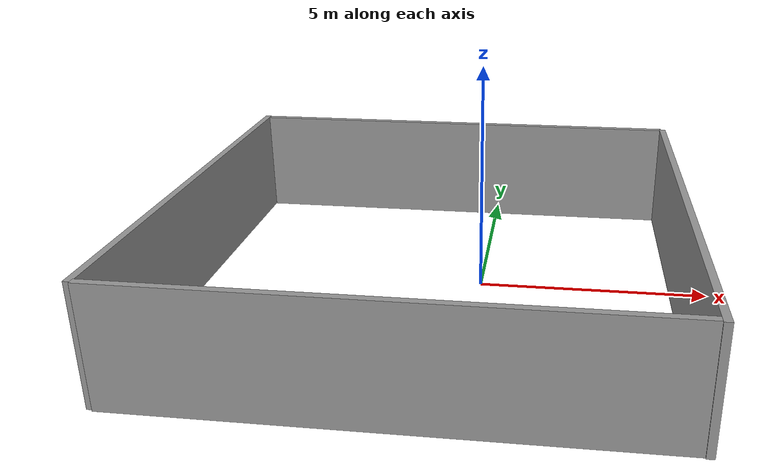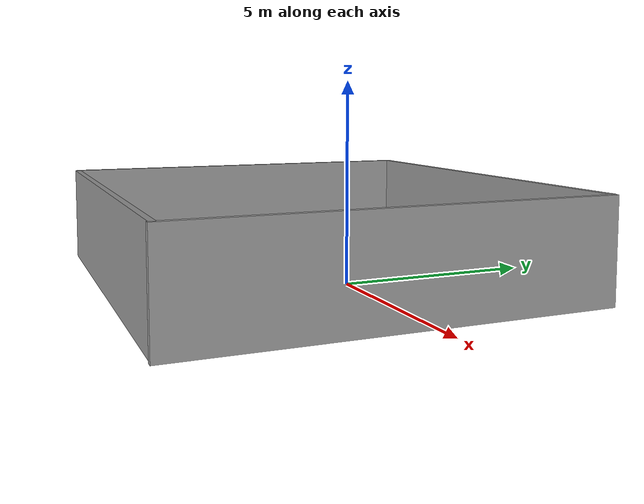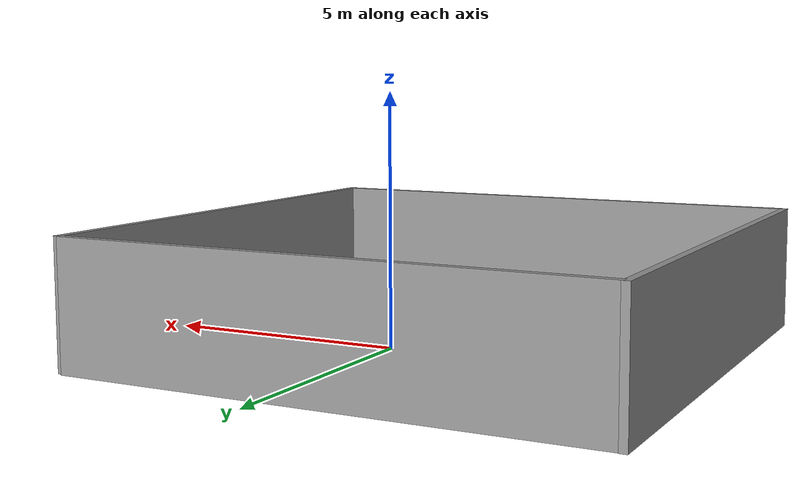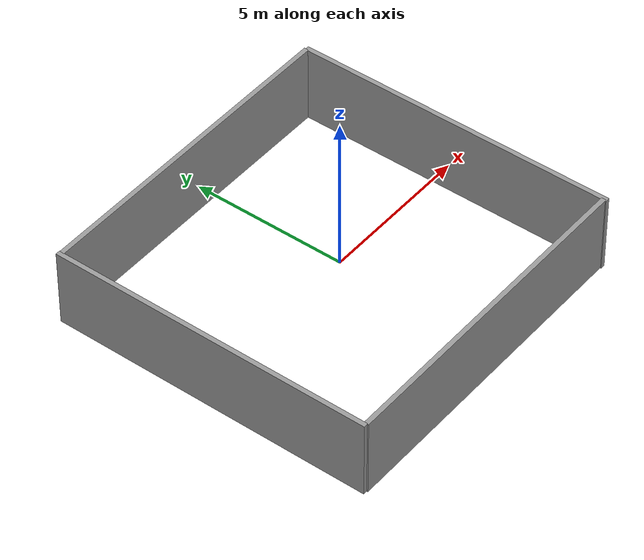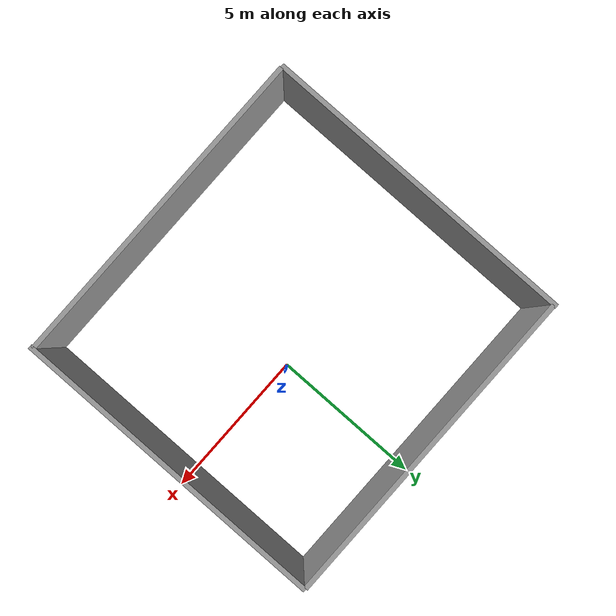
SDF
<?xml version='1.0'?>
<sdf version='1.6'>
  <model name='modelWalls.sdf'>
    <pose frame=''>-1.0238 -0.614247 0 0 -0 0</pose>
    <link name='Wall_11'>
      <collision name='Wall_11_Collision'>
        <geometry>
          <box>
            <size>10.25 0.15 2.5</size>
          </box>
        </geometry>
        <pose frame=''>0 0 1.25 0 -0 0</pose>
      </collision>
      <visual name='Wall_11_Visual'>
        <pose frame=''>0 0 1.25 0 -0 0</pose>
        <geometry>
          <box>
            <size>10.25 0.15 2.5</size>
          </box>
        </geometry>
        <material>
          <script>
            <uri>file://media/materials/scripts/gazebo.material</uri>
            <name>Gazebo/Grey</name>
          </script>
          <ambient>1 1 1 1</ambient>
        </material>
      </visual>
      <pose frame=''>-5.28367 0.03319 0 0 0 -1.5708</pose>
    </link>
    <link name='Wall_13'>
      <collision name='Wall_13_Collision'>
        <geometry>
          <box>
            <size>10.5 0.15 2.5</size>
          </box>
        </geometry>
        <pose frame=''>0 0 1.25 0 -0 0</pose>
      </collision>
      <visual name='Wall_13_Visual'>
        <pose frame=''>0 0 1.25 0 -0 0</pose>
        <geometry>
          <box>
            <size>10.5 0.15 2.5</size>
          </box>
        </geometry>
        <material>
          <script>
            <uri>file://media/materials/scripts/gazebo.material</uri>
            <name>Gazebo/Grey</name>
          </script>
          <ambient>1 1 1 1</ambient>
        </material>
      </visual>
      <pose frame=''>-0.004597 5.06813 0 0 -0 3.14159</pose>
    </link>
    <link name='Wall_15'>
      <collision name='Wall_15_Collision'>
        <geometry>
          <box>
            <size>10.25 0.15 2.5</size>
          </box>
        </geometry>
        <pose frame=''>0 0 1.25 0 -0 0</pose>
      </collision>
      <visual name='Wall_15_Visual'>
        <pose frame=''>0 0 1.25 0 -0 0</pose>
        <geometry>
          <box>
            <size>10.25 0.15 2.5</size>
          </box>
        </geometry>
        <material>
          <script>
            <uri>file://media/materials/scripts/gazebo.material</uri>
            <name>Gazebo/Grey</name>
          </script>
          <ambient>1 1 1 1</ambient>
        </material>
      </visual>
      <pose frame=''>5.28367 -0.03319 0 0 -0 1.5708</pose>
    </link>
    <link name='Wall_7'>
      <collision name='Wall_7_Collision'>
        <geometry>
          <box>
            <size>10.5 0.15 2.5</size>
          </box>
        </geometry>
        <pose frame=''>0 0 1.25 0 -0 0</pose>
      </collision>
      <visual name='Wall_7_Visual'>
        <pose frame=''>0 0 1.25 0 -0 0</pose>
        <geometry>
          <box>
            <size>10.5 0.15 2.5</size>
          </box>
        </geometry>
        <material>
          <script>
            <uri>file://media/materials/scripts/gazebo.material</uri>
            <name>Gazebo/Grey</name>
          </script>
          <ambient>1 1 1 1</ambient>
        </material>
      </visual>
      <pose frame=''>0.016889 -5.05658 0 0 -0 0</pose>
    </link>
    <static>1</static>
  </model>
</sdf>
